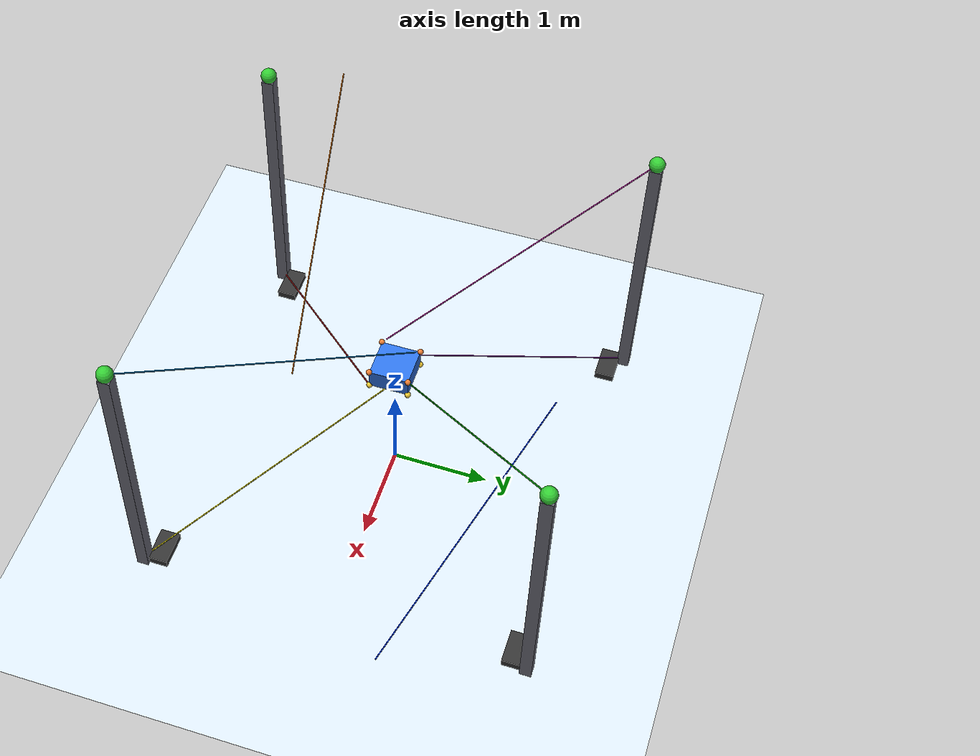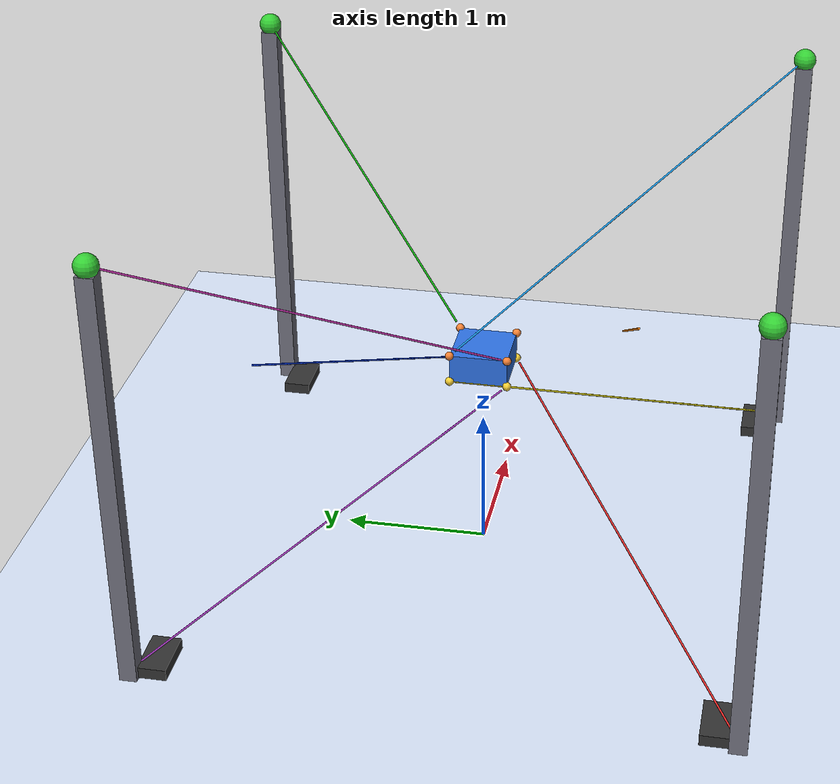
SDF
<?xml version="1.0"?>
<sdf version="1.10">
  <world name="cdpr_world">

    <!-- physics -->
    <physics name="default_physics" type="ode">
      <max_step_size>0.001</max_step_size>
      <real_time_update_rate>1000</real_time_update_rate>
      <real_time_factor>1.0</real_time_factor>
      <gravity>0 0 -9.81</gravity>
    </physics>

    <!-- lighting -->
    <light name="sun" type="directional">
      <pose>0 0 10 0 -0.7 0</pose>
      <direction>0 0 -1</direction>
      <diffuse>1 1 1 1</diffuse>
    </light>

    <light name="fill" type="point">
      <pose>0 0 4 0 0 0</pose>
      <diffuse>0.95 0.9 0.85 1</diffuse>
    </light>

    <!-- ground (validated) -->
    <model name="ground_plane">
      <static>true</static>
      <link name="ground_link">
        <visual name="ground_visual">
          <geometry>
            <plane>
              <normal>0 0 1</normal>
              <size>50 50</size>
            </plane>
          </geometry>
          <material>
            <ambient>0.8 0.9 1 1</ambient>
            <diffuse>0.85 0.9 0.98 1</diffuse>
          </material>
        </visual>
        <collision name="ground_collision">
          <geometry>
            <plane>
              <normal>0 0 1</normal>
              <size>50 50</size>
            </plane>
          </geometry>
        </collision>
      </link>
    </model>

    <!-- frame/pillars -->
    <model name="frame" static="true">
      <link name="pillar_fl"><pose>2 2 1.5 0 0 0</pose>
        <visual name="pillar_fl_vis"><geometry><box><size>0.12 0.12 3</size></box></geometry>
          <material><diffuse>0.45 0.45 0.5 1</diffuse></material></visual>
      </link>
      <link name="pillar_fr"><pose>2 -2 1.5 0 0 0</pose>
        <visual name="pillar_fr_vis"><geometry><box><size>0.12 0.12 3</size></box></geometry>
          <material><diffuse>0.45 0.45 0.5 1</diffuse></material></visual>
      </link>
      <link name="pillar_bl"><pose>-2 2 1.5 0 0 0</pose>
        <visual name="pillar_bl_vis"><geometry><box><size>0.12 0.12 3</size></box></geometry>
          <material><diffuse>0.45 0.45 0.5 1</diffuse></material></visual>
      </link>
      <link name="pillar_br"><pose>-2 -2 1.5 0 0 0</pose>
        <visual name="pillar_br_vis"><geometry><box><size>0.12 0.12 3</size></box></geometry>
          <material><diffuse>0.45 0.45 0.5 1</diffuse></material></visual>
      </link>
    </model>

    <!-- drums + floor anchors (colored) -->
    <model name="drum_fl" static="true"><link name="drum_fl_link"><pose>1.85 1.85 0.05 0 0 0</pose>
      <visual name="drum_fl_vis"><geometry><box><size>0.35 0.20 0.08</size></box></geometry><material><diffuse>0.2 0.2 0.2 1</diffuse></material></visual>
    </link></model>

    <model name="anchor_floor_fl" static="true"><link name="anchor_floor_fl_link"><pose>2 2 0.06 0 0 0</pose>
      <visual name="anchor_floor_fl_vis"><geometry><sphere><radius>0.06</radius></sphere></geometry><material><diffuse>0.85 0.25 0.25 1</diffuse></material></visual>
    </link></model>

    <model name="drum_fr" static="true"><link name="drum_fr_link"><pose>1.85 -1.85 0.05 0 0 0</pose>
      <visual name="drum_fr_vis"><geometry><box><size>0.35 0.20 0.08</size></box></geometry><material><diffuse>0.2 0.2 0.2 1</diffuse></material></visual>
    </link></model>

    <model name="anchor_floor_fr" static="true"><link name="anchor_floor_fr_link"><pose>2 -2 0.06 0 0 0</pose>
      <visual name="anchor_floor_fr_vis"><geometry><sphere><radius>0.06</radius></sphere></geometry><material><diffuse>0.85 0.25 0.25 1</diffuse></material></visual>
    </link></model>

    <model name="drum_bl" static="true"><link name="drum_bl_link"><pose>-1.85 1.85 0.05 0 0 0</pose>
      <visual name="drum_bl_vis"><geometry><box><size>0.35 0.20 0.08</size></box></geometry><material><diffuse>0.2 0.2 0.2 1</diffuse></material></visual>
    </link></model>

    <model name="anchor_floor_bl" static="true"><link name="anchor_floor_bl_link"><pose>-2 2 0.06 0 0 0</pose>
      <visual name="anchor_floor_bl_vis"><geometry><sphere><radius>0.06</radius></sphere></geometry><material><diffuse>0.85 0.25 0.25 1</diffuse></material></visual>
    </link></model>

    <model name="drum_br" static="true"><link name="drum_br_link"><pose>-1.85 -1.85 0.05 0 0 0</pose>
      <visual name="drum_br_vis"><geometry><box><size>0.35 0.20 0.08</size></box></geometry><material><diffuse>0.2 0.2 0.2 1</diffuse></material></visual>
    </link></model>

    <model name="anchor_floor_br" static="true"><link name="anchor_floor_br_link"><pose>-2 -2 0.06 0 0 0</pose>
      <visual name="anchor_floor_br_vis"><geometry><sphere><radius>0.06</radius></sphere></geometry><material><diffuse>0.85 0.25 0.25 1</diffuse></material></visual>
    </link></model>

    <!-- top pulleys (spheres) -->
    <model name="pulley_tl" static="true"><link name="pulley_tl_link"><pose>2 2 3.05 0 0 0</pose>
      <visual name="pul_tl_v"><geometry><sphere><radius>0.08</radius></sphere></geometry><material><diffuse>0.2 0.8 0.2 1</diffuse></material></visual>
    </link></model>

    <model name="pulley_tr" static="true"><link name="pulley_tr_link"><pose>2 -2 3.05 0 0 0</pose>
      <visual name="pul_tr_v"><geometry><sphere><radius>0.08</radius></sphere></geometry><material><diffuse>0.2 0.8 0.2 1</diffuse></material></visual>
    </link></model>

    <model name="pulley_bl" static="true"><link name="pulley_bl_link"><pose>-2 2 3.05 0 0 0</pose>
      <visual name="pul_bl_v"><geometry><sphere><radius>0.08</radius></sphere></geometry><material><diffuse>0.2 0.8 0.2 1</diffuse></material></visual>
    </link></model>

    <model name="pulley_br" static="true"><link name="pulley_br_link"><pose>-2 -2 3.05 0 0 0</pose>
      <visual name="pul_br_v"><geometry><sphere><radius>0.08</radius></sphere></geometry><material><diffuse>0.2 0.8 0.2 1</diffuse></material></visual>
    </link></model>

    <!-- platform (EE) -->
    <model name="platform">
      <pose>0 0 1.5 0 0 0</pose>
      <static>false</static>
      <link name="platform_link">
        <inertial><mass>5</mass></inertial>
        <visual name="body_vis"><geometry><box><size>0.4 0.4 0.2</size></box></geometry><material><diffuse>0.18 0.45 0.9 1</diffuse></material></visual>

        <!-- vertices: lower (L1..L4) and upper (U1..U4) -->
        <visual name="L1"><pose> 0.20  0.20 -0.10 0 0 0</pose><geometry><sphere><radius>0.03</radius></sphere></geometry><material><diffuse>0.95 0.8 0.2 1</diffuse></material></visual>
        <visual name="L2"><pose>-0.20  0.20 -0.10 0 0 0</pose><geometry><sphere><radius>0.03</radius></sphere></geometry><material><diffuse>0.95 0.8 0.2 1</diffuse></material></visual>
        <visual name="L3"><pose>-0.20 -0.20 -0.10 0 0 0</pose><geometry><sphere><radius>0.03</radius></sphere></geometry><material><diffuse>0.95 0.8 0.2 1</diffuse></material></visual>
        <visual name="L4"><pose> 0.20 -0.20 -0.10 0 0 0</pose><geometry><sphere><radius>0.03</radius></sphere></geometry><material><diffuse>0.95 0.8 0.2 1</diffuse></material></visual>

        <visual name="U1"><pose> 0.20  0.20  0.10 0 0 0</pose><geometry><sphere><radius>0.03</radius></sphere></geometry><material><diffuse>0.95 0.5 0.2 1</diffuse></material></visual>
        <visual name="U2"><pose>-0.20  0.20  0.10 0 0 0</pose><geometry><sphere><radius>0.03</radius></sphere></geometry><material><diffuse>0.95 0.5 0.2 1</diffuse></material></visual>
        <visual name="U3"><pose>-0.20 -0.20  0.10 0 0 0</pose><geometry><sphere><radius>0.03</radius></sphere></geometry><material><diffuse>0.95 0.5 0.2 1</diffuse></material></visual>
        <visual name="U4"><pose> 0.20 -0.20  0.10 0 0 0</pose><geometry><sphere><radius>0.03</radius></sphere></geometry><material><diffuse>0.95 0.5 0.2 1</diffuse></material></visual>
      </link>
    </model>

    <!-- STATIC cable visuals - top pulleys -->
    <!-- 1: pulley_tl -> U1 (green) -->
    <model name="cable_1" static="true"><link name="c1"><pose>1.100000 1.100000 2.325000 2.248916 -0.661651 -1.244997</pose>
      <visual name="c1_vis"><geometry><cylinder><radius>0.0065</radius><length>2.81959</length></cylinder></geometry><material><diffuse>0.05 0.75 0.05 1</diffuse></material></visual>
    </link></model>

    <!-- 2: pulley_tr -> U2 (cyan) -->
    <model name="cable_2" static="true"><link name="c2"><pose>0.900000 -0.900000 2.325000 -2.153536 -0.695696 1.185085</pose>
      <visual name="c2_vis"><geometry><cylinder><radius>0.0065</radius><length>3.322565</length></cylinder></geometry><material><diffuse>0.1 0.6 0.9 1</diffuse></material></visual>
    </link></model>

    <!-- 3: pulley_bl -> U3 (magenta) -->
    <model name="cable_3" static="true"><link name="c3"><pose>-1.100000 0.900000 2.325000 2.153536 0.599326 1.041678</pose>
      <visual name="c3_vis"><geometry><cylinder><radius>0.0065</radius><length>3.081003</length></cylinder></geometry><material><diffuse>0.8 0.2 0.7 1</diffuse></material></visual>
    </link></model>

    <!-- 4: pulley_br -> U4 (orange) -->
    <model name="cable_4" static="true"><link name="c4"><pose>-0.900000 -1.100000 2.325000 -2.248916 0.661651 -1.896644</pose>
      <visual name="c4_vis"><geometry><cylinder><radius>0.0065</radius><length>3.081003</length></cylinder></geometry><material><diffuse>0.95 0.5 0.05 1</diffuse></material></visual>
    </link></model>

    <!-- bottom cables -->
    <!-- 5: anchor_floor_fl -> L1 (blue) -->
    <model name="cable_5" static="true"><link name="c5"><pose>1.100000 1.100000 0.725000 2.159594 -0.705841 0.785398</pose>
      <visual name="c5_vis"><geometry><cylinder><radius>0.0065</radius><length>3.061000</length></cylinder></geometry><material><diffuse>0.05 0.25 0.95 1</diffuse></material></visual>
    </link></model>

    <!-- 6: anchor_floor_fr -> L2 (yellow) -->
    <model name="cable_6" static="true"><link name="c6"><pose>0.900000 -0.900000 0.725000 -1.020410 -0.705841 0.406574</pose>
      <visual name="c6_vis"><geometry><cylinder><radius>0.0065</radius><length>3.301534</length></cylinder></geometry><material><diffuse>0.95 0.9 0.1 1</diffuse></material></visual>
    </link></model>

    <!-- 7: anchor_floor_bl -> L3 (purple) -->
    <model name="cable_7" static="true"><link name="c7"><pose>-1.100000 0.900000 0.725000 1.020410 0.608949 0.348161</pose>
      <visual name="c7_vis"><geometry><cylinder><radius>0.0065</radius><length>3.056824</length></cylinder></geometry><material><diffuse>0.6 0.2 0.7 1</diffuse></material></visual>
    </link></model>

    <!-- 8: anchor_floor_br -> L4 (red) -->
    <model name="cable_8" static="true"><link name="c8"><pose>-0.900000 -1.100000 0.725000 -0.927295 0.774163 -0.402139</pose>
      <visual name="c8_vis"><geometry><cylinder><radius>0.0065</radius><length>3.056824</length></cylinder></geometry><material><diffuse>0.9 0.15 0.15 1</diffuse></material></visual>
    </link></model>

  </world>
</sdf>
